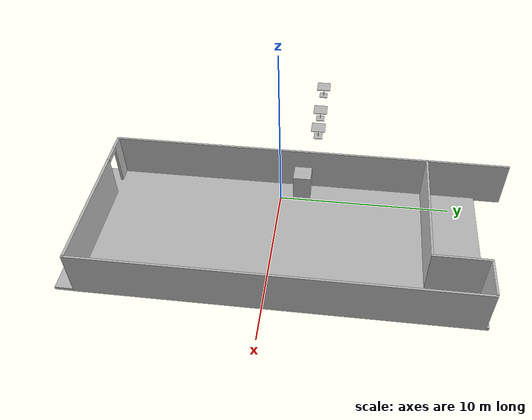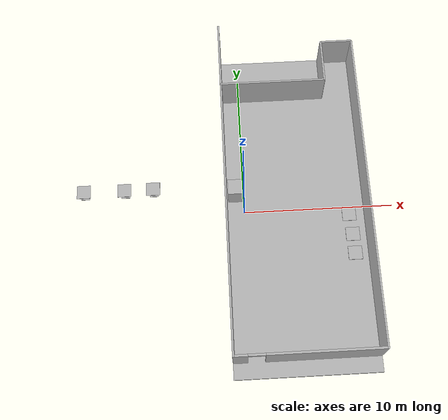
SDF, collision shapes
<?xml version='1.0'?>
<sdf version='1.7'>
  <model name='cafe_world.world'>
    <model name='cafe'>
      <static>1</static>
      <link name='link'>
        <collision name='main_floor'>
          <pose>-0.4 -0.75 0.0948 0 -0 0</pose>
          <geometry>
            <box>
              <size>9.38 22.63 0.19</size>
            </box>
          </geometry>
        </collision>
        <collision name='wall_1'>
          <pose>-5.03 0.53 1.415 0 -0 0</pose>
          <geometry>
            <box>
              <size>0.12 23.16 2.83</size>
            </box>
          </geometry>
        </collision>
        <collision name='wall_2'>
          <pose>4.24 -0.31 1.415 0 -0 0</pose>
          <geometry>
            <box>
              <size>0.12 21.48 2.83</size>
            </box>
          </geometry>
        </collision>
        <collision name='wall_3'>
          <pose>-1.48 7.43 1.415 0 -0 0</pose>
          <geometry>
            <box>
              <size>7.2 0.12 2.83</size>
            </box>
          </geometry>
        </collision>
        <collision name='wall_4'>
          <pose>2.09 8.9 1.435 0 -0 0</pose>
          <geometry>
            <box>
              <size>0.12 3.05 2.87</size>
            </box>
          </geometry>
        </collision>
        <collision name='wall_5'>
          <pose>3.155 10.4 1.435 0 -0 0</pose>
          <geometry>
            <box>
              <size>2.13 0.12 2.87</size>
            </box>
          </geometry>
        </collision>
        <collision name='wall_6'>
          <pose>0.615 -10.98 1.415 0 -0 0</pose>
          <geometry>
            <box>
              <size>7.36 0.15 2.83</size>
            </box>
          </geometry>
        </collision>
        <collision name='wall_7'>
          <pose>-4.62 -10.98 1.415 0 -0 0</pose>
          <geometry>
            <box>
              <size>0.93 0.15 2.83</size>
            </box>
          </geometry>
        </collision>
        <collision name='wall_8'>
          <pose>-3.61 -10.98 2.69 0 -0 0</pose>
          <geometry>
            <box>
              <size>1.09 0.15 0.28</size>
            </box>
          </geometry>
        </collision>
        <collision name='coke'>
          <pose>-4.385 0.26 0.95 0 -0 0</pose>
          <geometry>
            <box>
              <size>1.03 1.03 1.52</size>
            </box>
          </geometry>
        </collision>
        <visual name='visual'>
          <geometry>
            <mesh>
              <uri>model://cafe/meshes/cafe.dae</uri>
            </mesh>
          </geometry>
        </visual>
      </link>
      <pose>3.84875 0.998075 0 0 -0 0</pose>
    </model>
    <model name='cafe_table'>
      <static>1</static>
      <link name='link'>
        <collision name='surface'>
          <pose>0 0 0.755 0 -0 0</pose>
          <geometry>
            <box>
              <size>0.913 0.913 0.04</size>
            </box>
          </geometry>
        </collision>
        <collision name='column'>
          <pose>0 0 0.37 0 -0 0</pose>
          <geometry>
            <box>
              <size>0.042 0.042 0.74</size>
            </box>
          </geometry>
        </collision>
        <collision name='base'>
          <pose>0 0 0.02 0 -0 0</pose>
          <geometry>
            <box>
              <size>0.56 0.56 0.04</size>
            </box>
          </geometry>
        </collision>
        <visual name='visual'>
          <geometry>
            <mesh>
              <uri>model://cafe_table/meshes/cafe_table.dae</uri>
            </mesh>
          </geometry>
        </visual>
      </link>
      <pose>-10.7617 1.77305 0 0 -0 0</pose>
    </model>
    <model name='cafe_table_0'>
      <static>1</static>
      <link name='link'>
        <collision name='surface'>
          <pose>0 0 0.755 0 -0 0</pose>
          <geometry>
            <box>
              <size>0.913 0.913 0.04</size>
            </box>
          </geometry>
        </collision>
        <collision name='column'>
          <pose>0 0 0.37 0 -0 0</pose>
          <geometry>
            <box>
              <size>0.042 0.042 0.74</size>
            </box>
          </geometry>
        </collision>
        <collision name='base'>
          <pose>0 0 0.02 0 -0 0</pose>
          <geometry>
            <box>
              <size>0.56 0.56 0.04</size>
            </box>
          </geometry>
        </collision>
        <visual name='visual'>
          <geometry>
            <mesh>
              <uri>model://cafe_table/meshes/cafe_table.dae</uri>
            </mesh>
          </geometry>
        </visual>
      </link>
      <pose>-8.03905 1.75272 0 0 -0 0</pose>
    </model>
    <model name='cafe_table_1'>
      <static>1</static>
      <link name='link'>
        <collision name='surface'>
          <pose>0 0 0.755 0 -0 0</pose>
          <geometry>
            <box>
              <size>0.913 0.913 0.04</size>
            </box>
          </geometry>
        </collision>
        <collision name='column'>
          <pose>0 0 0.37 0 -0 0</pose>
          <geometry>
            <box>
              <size>0.042 0.042 0.74</size>
            </box>
          </geometry>
        </collision>
        <collision name='base'>
          <pose>0 0 0.02 0 -0 0</pose>
          <geometry>
            <box>
              <size>0.56 0.56 0.04</size>
            </box>
          </geometry>
        </collision>
        <visual name='visual'>
          <geometry>
            <mesh>
              <uri>model://cafe_table/meshes/cafe_table.dae</uri>
            </mesh>
          </geometry>
        </visual>
      </link>
      <pose>-6.09156 1.76413 0 0 -0 0</pose>
    </model>
    <model name='cafe_table_2'>
      <static>1</static>
      <link name='link'>
        <collision name='surface'>
          <pose>0 0 0.755 0 -0 0</pose>
          <geometry>
            <box>
              <size>0.913 0.913 0.04</size>
            </box>
          </geometry>
        </collision>
        <collision name='column'>
          <pose>0 0 0.37 0 -0 0</pose>
          <geometry>
            <box>
              <size>0.042 0.042 0.74</size>
            </box>
          </geometry>
        </collision>
        <collision name='base'>
          <pose>0 0 0.02 0 -0 0</pose>
          <geometry>
            <box>
              <size>0.56 0.56 0.04</size>
            </box>
          </geometry>
        </collision>
        <visual name='visual'>
          <geometry>
            <mesh>
              <uri>model://cafe_table/meshes/cafe_table.dae</uri>
            </mesh>
          </geometry>
        </visual>
      </link>
      <pose>7.07125 -3.42392 0 0 -0 0</pose>
    </model>
    <model name='cafe_table_3'>
      <static>1</static>
      <link name='link'>
        <collision name='surface'>
          <pose>0 0 0.755 0 -0 0</pose>
          <geometry>
            <box>
              <size>0.913 0.913 0.04</size>
            </box>
          </geometry>
        </collision>
        <collision name='column'>
          <pose>0 0 0.37 0 -0 0</pose>
          <geometry>
            <box>
              <size>0.042 0.042 0.74</size>
            </box>
          </geometry>
        </collision>
        <collision name='base'>
          <pose>0 0 0.02 0 -0 0</pose>
          <geometry>
            <box>
              <size>0.56 0.56 0.04</size>
            </box>
          </geometry>
        </collision>
        <visual name='visual'>
          <geometry>
            <mesh>
              <uri>model://cafe_table/meshes/cafe_table.dae</uri>
            </mesh>
          </geometry>
        </visual>
      </link>
      <pose>7.04259 -2.13001 0 0 -0 0</pose>
    </model>
    <model name='cafe_table_4'>
      <static>1</static>
      <link name='link'>
        <collision name='surface'>
          <pose>0 0 0.755 0 -0 0</pose>
          <geometry>
            <box>
              <size>0.913 0.913 0.04</size>
            </box>
          </geometry>
        </collision>
        <collision name='column'>
          <pose>0 0 0.37 0 -0 0</pose>
          <geometry>
            <box>
              <size>0.042 0.042 0.74</size>
            </box>
          </geometry>
        </collision>
        <collision name='base'>
          <pose>0 0 0.02 0 -0 0</pose>
          <geometry>
            <box>
              <size>0.56 0.56 0.04</size>
            </box>
          </geometry>
        </collision>
        <visual name='visual'>
          <geometry>
            <mesh>
              <uri>model://cafe_table/meshes/cafe_table.dae</uri>
            </mesh>
          </geometry>
        </visual>
      </link>
      <pose>6.92978 -0.734045 0 0 -0 0</pose>
    </model>
    <static>0</static>
    <allow_auto_disable>1</allow_auto_disable>
  </model>
</sdf>
